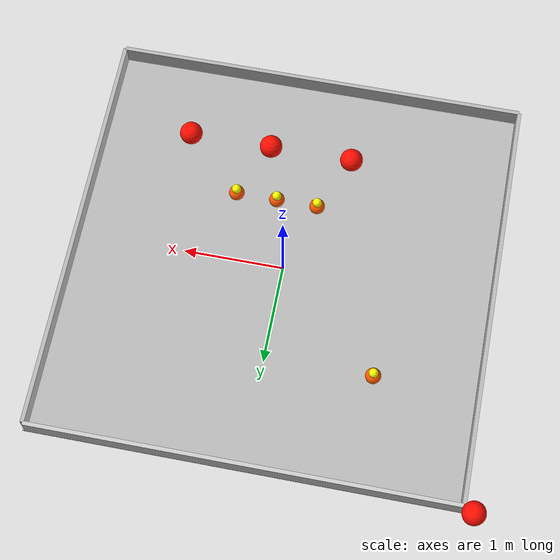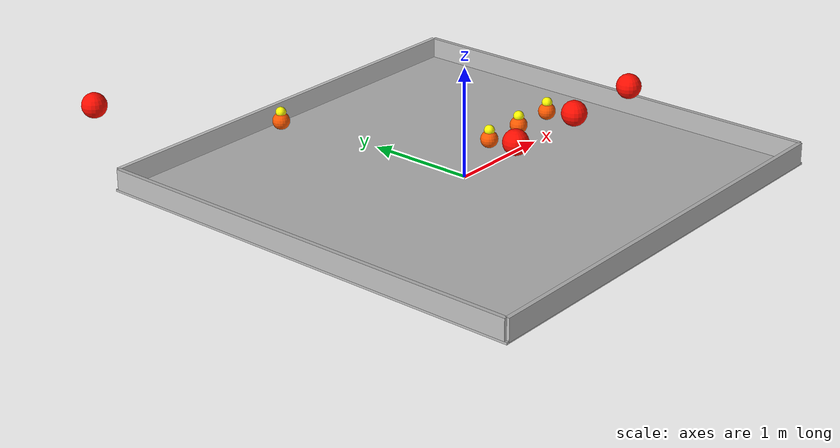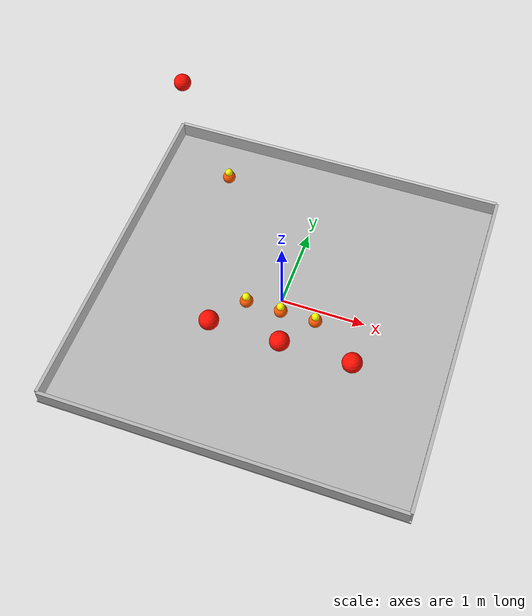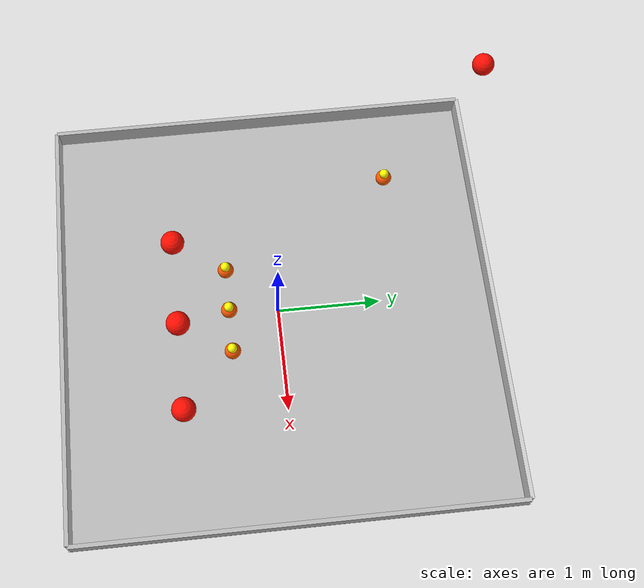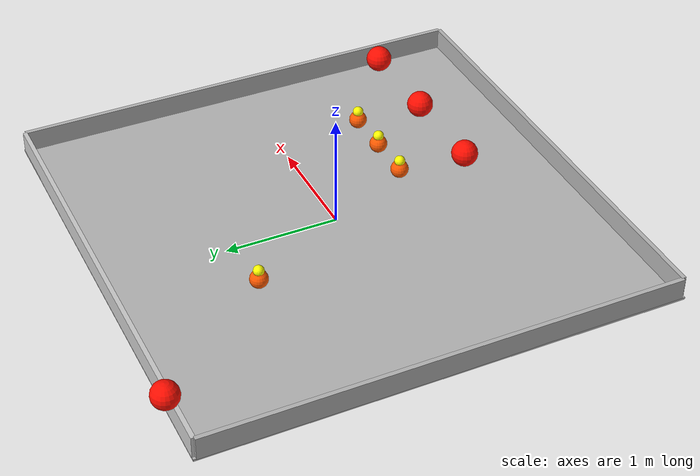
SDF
<sdf version="1.7">
 <world name="competition_world">
  <light name="sun" type="directional">
   <pose>0 0 10 0 -0 0</pose>
   <diffuse>0.8 0.8 0.8 1</diffuse>
   <specular>0.2 0.2 0.2 1</specular>
   <attenuation>
    <range>1000</range>
    <constant>0.9</constant>
    <linear>0.01</linear>
    <quadratic>0.001</quadratic>
   </attenuation>
   <direction>-0.5 0.1 -0.9</direction>
   <spot><inner_angle>0</inner_angle><outer_angle>0</outer_angle><falloff>0</falloff></spot>
  </light>
  <gravity>0 0 -9.8</gravity>
  <model name="north_wall">
   <static>1</static>
   <pose>0 2.08 0.1 0 -0 0</pose>
   <link name="link">
    <collision name="collision"><geometry><box><size>4.15 0.04 0.2</size></box></geometry></collision>
    <visual name="visual">
     <geometry><box><size>4.15 0.04 0.2</size></box></geometry>
     <material><ambient>0.8 0.8 0.8 1</ambient><diffuse>0.8 0.8 0.8 1</diffuse></material>
    </visual>
   </link>
  </model>
  <model name="south_wall">
   <static>1</static>
   <pose>0 -2.08 0.1 0 -0 0</pose>
   <link name="link">
    <collision name="collision"><geometry><box><size>4.15 0.04 0.2</size></box></geometry></collision>
    <visual name="visual"><geometry><box><size>4.15 0.04 0.2</size></box></geometry></visual>
   </link>
  </model>
  <model name="west_wall">
   <static>1</static>
   <pose>-2.08 0 0.1 0 -0 0</pose>
   <link name="link">
    <collision name="collision"><geometry><box><size>0.04 4.15 0.2</size></box></geometry></collision>
    <visual name="visual"><geometry><box><size>0.04 4.15 0.2</size></box></geometry></visual>
   </link>
  </model>
  <model name="east_wall">
   <static>1</static>
   <pose>2.08 0 0.1 0 -0 0</pose>
   <link name="link">
    <collision name="collision"><geometry><box><size>0.04 4.15 0.2</size></box></geometry></collision>
    <visual name="visual"><geometry><box><size>0.04 4.15 0.2</size></box></geometry></visual>
   </link>
  </model>
  <model name="building_a_fire">
   <static>1</static>
   <link name="fire_link">
    <visual name="fire_red">
     <pose>-1.061490 1.135600 0.370 0 -0 0</pose>
     <geometry><sphere><radius>0.11</radius></sphere></geometry>
     <material><ambient>1 0.05 0 0</ambient><diffuse>1 0.05 0 0</diffuse><emissive>1 0.02 0 0</emissive></material>
    </visual>
    <visual name="fire_orange">
     <pose>0 0 0.19 0 -0 0</pose>
     <geometry><sphere><radius>0.075</radius></sphere></geometry>
     <material><ambient>1 0.35 0 0</ambient><diffuse>1 0.35 0 0</diffuse><emissive>1 0.2 0 0</emissive></material>
    </visual>
    <visual name="fire_yellow">
     <pose>0 0 0.27 0 -0 0</pose>
     <geometry><sphere><radius>0.045</radius></sphere></geometry>
     <material><ambient>1 1 0 0</ambient><diffuse>1 1 0 0</diffuse><emissive>1 0.8 0 0</emissive></material>
    </visual>
   </link>
   <plugin name="fire_plugin" filename="libfire_plugin.so"/>
   <pose>-1.061490 1.135600 0.370 0 -0 0</pose>
  </model>
  <model name="building_b_fire">
   <static>1</static>
   <link name="fire_link">
    <visual name="fire_red">
     <pose>-0.249490 -0.465500 0.370 0 -0 0</pose>
     <geometry><sphere><radius>0.11</radius></sphere></geometry>
     <material><ambient>1 0.05 0 0</ambient><diffuse>1 0.05 0 0</diffuse><emissive>1 0.02 0 0</emissive></material>
    </visual>
    <visual name="fire_orange">
     <pose>0 0 0.19 0 -0 0</pose>
     <geometry><sphere><radius>0.075</radius></sphere></geometry>
     <material><ambient>1 0.35 0 0</ambient><diffuse>1 0.35 0 0</diffuse><emissive>1 0.2 0 0</emissive></material>
    </visual>
    <visual name="fire_yellow">
     <pose>0 0 0.27 0 -0 0</pose>
     <geometry><sphere><radius>0.045</radius></sphere></geometry>
     <material><ambient>1 1 0 0</ambient><diffuse>1 1 0 0</diffuse><emissive>1 0.8 0 0</emissive></material>
    </visual>
   </link>
   <plugin name="fire_plugin" filename="libfire_plugin.so"/>
   <pose>-0.249490 -0.465500 0.370 0 -0 0</pose>
  </model>
  <model name="building_c_fire">
   <static>1</static>
   <link name="fire_link">
    <visual name="fire_red">
     <pose>0.146898 -0.465500 0.370 0 -0 0</pose>
     <geometry><sphere><radius>0.11</radius></sphere></geometry>
     <material><ambient>1 0.05 0 0</ambient><diffuse>1 0.05 0 0</diffuse><emissive>1 0.02 0 0</emissive></material>
    </visual>
    <visual name="fire_orange">
     <pose>0 0 0.19 0 -0 0</pose>
     <geometry><sphere><radius>0.075</radius></sphere></geometry>
     <material><ambient>1 0.35 0 0</ambient><diffuse>1 0.35 0 0</diffuse><emissive>1 0.2 0 0</emissive></material>
    </visual>
    <visual name="fire_yellow">
     <pose>0 0 0.27 0 -0 0</pose>
     <geometry><sphere><radius>0.045</radius></sphere></geometry>
     <material><ambient>1 1 0 0</ambient><diffuse>1 1 0 0</diffuse><emissive>1 0.8 0 0</emissive></material>
    </visual>
   </link>
   <plugin name="fire_plugin" filename="libfire_plugin.so"/>
   <pose>0.146898 -0.465500 0.370 0 -0 0</pose>
  </model>
  <model name="building_d_fire">
   <static>1</static>
   <link name="fire_link">
    <visual name="fire_red">
     <pose>0.543285 -0.465500 0.370 0 -0 0</pose>
     <geometry><sphere><radius>0.11</radius></sphere></geometry>
     <material><ambient>1 0.05 0 0</ambient><diffuse>1 0.05 0 0</diffuse><emissive>1 0.02 0 0</emissive></material>
    </visual>
    <visual name="fire_orange">
     <pose>0 0 0.19 0 -0 0</pose>
     <geometry><sphere><radius>0.075</radius></sphere></geometry>
     <material><ambient>1 0.35 0 0</ambient><diffuse>1 0.35 0 0</diffuse><emissive>1 0.2 0 0</emissive></material>
    </visual>
    <visual name="fire_yellow">
     <pose>0 0 0.27 0 -0 0</pose>
     <geometry><sphere><radius>0.045</radius></sphere></geometry>
     <material><ambient>1 1 0 0</ambient><diffuse>1 1 0 0</diffuse><emissive>1 0.8 0 0</emissive></material>
    </visual>
   </link>
   <plugin name="fire_plugin" filename="libfire_plugin.so"/>
   <pose>0.543285 -0.465500 0.370 0 -0 0</pose>
  </model>
  <model name="ground_map_competition">
   <static>1</static>
   <link name="link">
    <collision name="collision"><geometry><box><size>4.2 4.2 0.02</size></box></geometry></collision>
    <visual name="visual">
     <geometry><box><size>4.2 4.2 0.02</size></box></geometry>
     <material>
      <script>
       <uri>model://ground_map/materials/scripts</uri>
       <uri>model://ground_map/materials/textures</uri>
       <name>SmartCommunity/GroundMap</name>
      </script>
     </material>
    </visual>
   </link>
  </model>
  <magnetic_field>6e-06 2.3e-05 -4.2e-05</magnetic_field>
  <atmosphere type="adiabatic"/>
  <physics type="ode">
   <max_step_size>0.001</max_step_size>
   <real_time_factor>1</real_time_factor>
   <real_time_update_rate>1000</real_time_update_rate>
  </physics>
  <scene><ambient>0.4 0.4 0.4 1</ambient><background>0.7 0.7 0.7 1</background><shadows>1</shadows></scene>
  <audio><device>default</device></audio>
  <spherical_coordinates>
   <surface_model>EARTH_WGS84</surface_model>
   <latitude_deg>0</latitude_deg>
   <longitude_deg>0</longitude_deg>
   <elevation>0</elevation>
   <heading_deg>0</heading_deg>
  </spherical_coordinates>
 </world>
</sdf>
